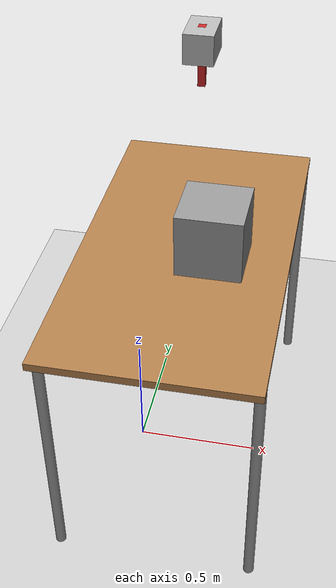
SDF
<sdf version="1.7">
 <world name="default">
  <model name="ground_plane">
   <static>1</static>
   <link name="link">
    <collision name="collision">
     <geometry><plane><normal>0 0 1</normal><size>100 100</size></plane></geometry>
     <surface>
      <contact><collide_bitmask>65535</collide_bitmask></contact>
      <friction><ode><mu>100</mu><mu2>50</mu2></ode></friction>
     </surface>
    </collision>
    <visual name="visual">
     <cast_shadows>0</cast_shadows>
     <geometry><plane><normal>0 0 1</normal><size>100 100</size></plane></geometry>
     <material>
      <script><uri>file://media/materials/scripts/gazebo.material</uri><name>Gazebo/Grey</name></script>
     </material>
    </visual>
   </link>
  </model>
  <light name="sun" type="directional">
   <pose>0 0 10 0 -0 0</pose>
   <diffuse>0.8 0.8 0.8 1</diffuse>
   <specular>0.2 0.2 0.2 1</specular>
   <attenuation>
    <range>1000</range>
    <constant>0.9</constant>
    <linear>0.01</linear>
    <quadratic>0.001</quadratic>
   </attenuation>
   <direction>-0.5 0.1 -0.9</direction>
   <spot><inner_angle>0</inner_angle><outer_angle>0</outer_angle><falloff>0</falloff></spot>
  </light>
  <model name="table">
   <static>0</static>
   <link name="link">
    <collision name="surface">
     <pose>0 0 1 0 -0 0</pose>
     <geometry><box><size>1.5 0.8 0.03</size></box></geometry>
     <surface><friction><ode><mu>0.6</mu><mu2>0.6</mu2></ode></friction></surface>
    </collision>
    <visual name="visual1">
     <pose>0 0 1 0 -0 0</pose>
     <geometry><box><size>1.5 0.8 0.03</size></box></geometry>
     <material>
      <script><uri>file://media/materials/scripts/gazebo.material</uri><name>Gazebo/Wood</name></script>
     </material>
    </visual>
    <collision name="front_left_leg">
     <pose>0.68 0.38 0.5 0 -0 0</pose>
     <geometry><cylinder><radius>0.02</radius><length>1</length></cylinder></geometry>
    </collision>
    <visual name="front_left_leg">
     <pose>0.68 0.38 0.5 0 -0 0</pose>
     <geometry><cylinder><radius>0.02</radius><length>1</length></cylinder></geometry>
     <material>
      <script><uri>file://media/materials/scripts/gazebo.material</uri><name>Gazebo/Grey</name></script>
     </material>
    </visual>
    <collision name="front_right_leg">
     <pose>0.68 -0.38 0.5 0 -0 0</pose>
     <geometry><cylinder><radius>0.02</radius><length>1</length></cylinder></geometry>
    </collision>
    <visual name="front_right_leg">
     <pose>0.68 -0.38 0.5 0 -0 0</pose>
     <geometry><cylinder><radius>0.02</radius><length>1</length></cylinder></geometry>
     <material>
      <script><uri>file://media/materials/scripts/gazebo.material</uri><name>Gazebo/Grey</name></script>
     </material>
    </visual>
    <collision name="back_right_leg">
     <pose>-0.68 -0.38 0.5 0 -0 0</pose>
     <geometry><cylinder><radius>0.02</radius><length>1</length></cylinder></geometry>
    </collision>
    <visual name="back_right_leg">
     <pose>-0.68 -0.38 0.5 0 -0 0</pose>
     <geometry><cylinder><radius>0.02</radius><length>1</length></cylinder></geometry>
     <material>
      <script><uri>file://media/materials/scripts/gazebo.material</uri><name>Gazebo/Grey</name></script>
     </material>
    </visual>
    <collision name="back_left_leg">
     <pose>-0.68 0.38 0.5 0 -0 0</pose>
     <geometry><cylinder><radius>0.02</radius><length>1</length></cylinder></geometry>
    </collision>
    <visual name="back_left_leg">
     <pose>-0.68 0.38 0.5 0 -0 0</pose>
     <geometry><cylinder><radius>0.02</radius><length>1</length></cylinder></geometry>
     <material>
      <script><uri>file://media/materials/scripts/gazebo.material</uri><name>Gazebo/Grey</name></script>
     </material>
    </visual>
    <inertial>
     <inertia><ixx>1</ixx><ixy>0</ixy><ixz>0</ixz><iyy>1</iyy><iyz>0</iyz><izz>1</izz></inertia>
     <mass>1</mass>
    </inertial>
   </link>
   <pose>0.189899 0.054775 -2e-05 -0 -6e-06 1.56976</pose>
  </model>
  <gravity>0 0 -9.8</gravity>
  <magnetic_field>6e-06 2.3e-05 -4.2e-05</magnetic_field>
  <atmosphere type="adiabatic"/>
  <physics type="ode">
   <max_step_size>0.001</max_step_size>
   <real_time_factor>1</real_time_factor>
   <real_time_update_rate>1000</real_time_update_rate>
  </physics>
  <scene><ambient>0.4 0.4 0.4 1</ambient><background>0.7 0.7 0.7 1</background><shadows>1</shadows></scene>
  <audio><device>default</device></audio>
  <spherical_coordinates>
   <surface_model>EARTH_WGS84</surface_model>
   <latitude_deg>0</latitude_deg>
   <longitude_deg>0</longitude_deg>
   <elevation>0</elevation>
   <heading_deg>0</heading_deg>
  </spherical_coordinates>
  <model name="unit_box">
   <link name="link">
    <inertial>
     <mass>1</mass>
     <inertia>
      <ixx>0.166667</ixx>
      <ixy>0</ixy>
      <ixz>0</ixz>
      <iyy>0.166667</iyy>
      <iyz>0</iyz>
      <izz>0.166667</izz>
     </inertia>
    </inertial>
    <pose>4.98663 -3.9273 0.702972 0 -0 0</pose>
    <visual name="visual">
     <geometry><box><size>0.25 0.25 0.25</size></box></geometry>
     <material>
      <script><name>Gazebo/Grey</name><uri>file://media/materials/scripts/gazebo.material</uri></script>
      <shader type="pixel"><normal_map>__default__</normal_map></shader>
      <ambient>0.3 0.3 0.3 1</ambient>
      <diffuse>0.7 0.7 0.7 1</diffuse>
      <specular>0.01 0.01 0.01 1</specular>
      <emissive>0 0 0 1</emissive>
     </material>
    </visual>
    <collision name="collision">
     <geometry><box><size>0.25 0.25 0.25</size></box></geometry>
     <surface>
      <friction>
       <ode><mu>1</mu><mu2>1</mu2><fdir1>0 0 0</fdir1><slip1>0</slip1><slip2>0</slip2></ode>
       <torsional>
        <coefficient>1</coefficient>
        <patch_radius>0</patch_radius>
        <surface_radius>0</surface_radius>
        <use_patch_radius>1</use_patch_radius>
        <ode><slip>0</slip></ode>
       </torsional>
      </friction>
      <bounce><restitution_coefficient>0</restitution_coefficient><threshold>1e+06</threshold></bounce>
      <contact>
       <collide_without_contact>0</collide_without_contact>
       <collide_without_contact_bitmask>1</collide_without_contact_bitmask>
       <collide_bitmask>1</collide_bitmask>
       <ode>
        <soft_cfm>0</soft_cfm>
        <soft_erp>0.2</soft_erp>
        <kp>1e+13</kp>
        <kd>1</kd>
        <max_vel>0.01</max_vel>
        <min_depth>0</min_depth>
       </ode>
       <bullet>
        <split_impulse>1</split_impulse>
        <split_impulse_penetration_threshold>-0.01</split_impulse_penetration_threshold>
        <soft_cfm>0</soft_cfm>
        <soft_erp>0.2</soft_erp>
        <kp>1e+13</kp>
        <kd>1</kd>
       </bullet>
      </contact>
     </surface>
    </collision>
   </link>
   <static>0</static>
   <pose>-4.65576 3.954 0.436876 6e-06 -3.2e-05 -0.00676</pose>
  </model>
  <model name="camera">
   <joint name="world_to_base" type="fixed">
    <pose relative_to="__model__">0 0 0 0 -0 0</pose>
    <parent>world</parent>
    <child>camera_link</child>
   </joint>
   <link name="camera_link">
    <pose relative_to="world_to_base">0 0 0 0 -0 0</pose>
    <inertial>
     <pose>0.025 0 0 0 -0 0</pose>
     <mass>2e-05</mass>
     <inertia>
      <ixx>2e-06</ixx>
      <ixy>0</ixy>
      <ixz>0</ixz>
      <iyy>2.0125e-06</iyy>
      <iyz>0</iyz>
      <izz>2.0125e-06</izz>
     </inertia>
    </inertial>
    <collision name="camera_link_collision"><geometry><box><size>0.1 0.15 0.1</size></box></geometry></collision>
    <collision name="camera_link_fixed_joint_lump__lens_collision_1">
     <pose>0.05 0 0 0 -0 0</pose>
     <geometry><box><size>0.2 0.025 0.025</size></box></geometry>
     <surface><friction><ode><mu>0.2</mu><mu2>0.2</mu2></ode></friction></surface>
    </collision>
    <visual name="camera_link_visual"><geometry><box><size>0.1 0.15 0.1</size></box></geometry></visual>
    <visual name="camera_link_fixed_joint_lump__lens_visual_1">
     <pose>0.05 0 0 0 -0 0</pose>
     <geometry><box><size>0.2 0.025 0.025</size></box></geometry>
     <material>
      <script><name>Gazebo/Red</name><uri>file://media/materials/scripts/gazebo.material</uri></script>
     </material>
    </visual>
    <sensor name="realsense" type="depth">
     <always_on>1</always_on>
     <visualize>1</visualize>
     <update_rate>0</update_rate>
     <camera>
      <horizontal_fov>1.0472</horizontal_fov>
      <image><width>640</width><height>480</height><format>B8G8R8</format></image>
      <clip><near>0.01</near><far>3</far></clip>
     </camera>
     <plugin name="camera_controller" filename="libgazebo_ros_camera.so">
      <baseline>0.2</baseline>
      <alwaysOn>1</alwaysOn>
      <updateRate>0.0</updateRate>
      <cameraName>/realsense</cameraName>
      <imageTopicName>/realsense/color/image_raw</imageTopicName>
      <cameraInfoTopicName>/realsense/color/camera_info</cameraInfoTopicName>
      <depthImageTopicName>/realsense/depth/image_raw</depthImageTopicName>
      <depthImageInfoTopicName>/realsense/depth/camera_info</depthImageInfoTopicName>
      <pointCloudTopicName>/realsense/depth/points</pointCloudTopicName>
      <frameName>camera_link_optical</frameName>
      <pointCloudCutoff>0.1</pointCloudCutoff>
      <pointCloudCutoffMax>3</pointCloudCutoffMax>
      <distortionK1>0</distortionK1>
      <distortionK2>0</distortionK2>
      <distortionK3>0</distortionK3>
      <distortionT1>0</distortionT1>
      <distortionT2>0</distortionT2>
      <CxPrime>0</CxPrime>
      <Cx>0</Cx>
      <Cy>0</Cy>
      <focalLength>0</focalLength>
      <hackBaseline>0</hackBaseline>
     </plugin>
    </sensor>
   </link>
   <static>1</static>
   <pose>0.251195 0 1.85928 0 1.57 0</pose>
  </model>
 </world>
</sdf>
